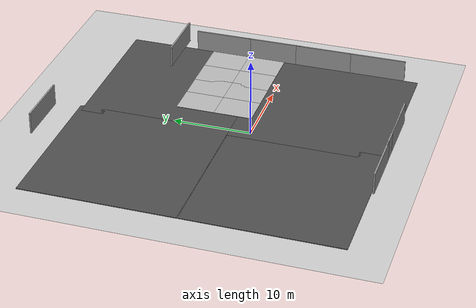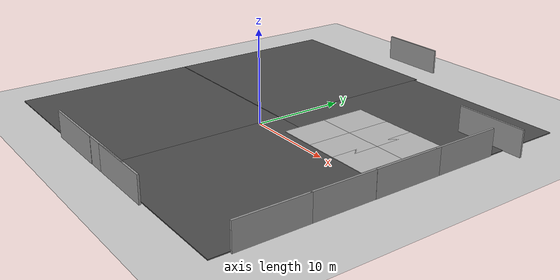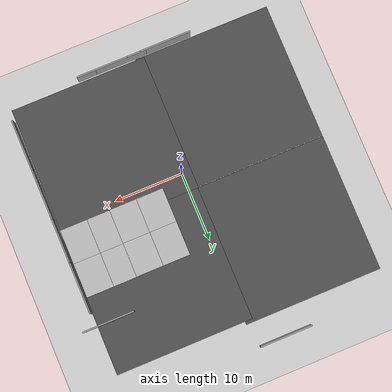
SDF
<sdf version="1.6">
 <world name="default">
  <plugin filename="gz-sim-physics-system" name="gz::sim::systems::Physics">
   <engine><filename>libgz-physics-dartsim-plugin.so</filename></engine>
  </plugin>
  <plugin filename="gz-sim-user-commands-system" name="gz::sim::systems::UserCommands"/>
  <plugin filename="gz-sim-scene-broadcaster-system" name="gz::sim::systems::SceneBroadcaster"/>
  <plugin filename="gz-sim-sensors-system" name="gz::sim::systems::Sensors">
   <render_engine>ogre2</render_engine>
  </plugin>
  <plugin filename="gz-sim-imu-system" name="gz::sim::systems::Imu"/>
  <plugin filename="gz-sim-navsat-system" name="gz::sim::systems::NavSat"/>
  <gravity>0.0 0.0 -9.8</gravity>
  <physics name="8ms" type="dartsim">
   <max_step_size>0.008</max_step_size>
   <real_time_factor>1.0</real_time_factor>
  </physics>
  <scene>
   <ambient>0.4 0.4 0.4 1</ambient>
   <background>0.7 0.7 0.7 1</background>
   <shadows>false</shadows>
   <grid>false</grid>
   <origin_visual>false</origin_visual>
  </scene>
  <model name="ground_plane">
   <static>1</static>
   <link name="link">
    <collision name="collision">
     <geometry><plane><normal>0 0 1</normal><size>100 100</size></plane></geometry>
     <surface><friction><ode><mu>100</mu><mu2>50</mu2></ode></friction></surface>
    </collision>
    <visual name="visual">
     <cast_shadows>0</cast_shadows>
     <geometry><plane><normal>0 0 1</normal><size>100 100</size></plane></geometry>
     <material>
      <script><uri>file://media/materials/scripts/gazebo.material</uri><name>Gazebo/Grey</name></script>
     </material>
    </visual>
   </link>
  </model>
  <model name="asphalt_plane">
   <static>1</static>
   <link name="link">
    <collision name="collision">
     <geometry><box><size>20 20 0.1</size></box></geometry>
     <surface><friction><ode><mu>100</mu><mu2>50</mu2></ode></friction></surface>
    </collision>
    <visual name="visual">
     <cast_shadows>0</cast_shadows>
     <geometry><box><size>20 20 0.1</size></box></geometry>
     <material>
      <script>
       <uri>model://asphalt_plane/materials/scripts</uri>
       <uri>model://asphalt_plane/materials/textures</uri>
       <name>vrc/asphalt</name>
      </script>
     </material>
    </visual>
   </link>
   <pose>-10.1692 -7.43707 0 0 -0 0</pose>
  </model>
  <model name="asphalt_plane_clone">
   <static>1</static>
   <link name="link">
    <collision name="collision">
     <geometry><box><size>20 20 0.1</size></box></geometry>
     <surface><friction><ode><mu>100</mu><mu2>50</mu2></ode></friction></surface>
    </collision>
    <visual name="visual">
     <cast_shadows>0</cast_shadows>
     <geometry><box><size>20 20 0.1</size></box></geometry>
     <material>
      <script>
       <uri>model://asphalt_plane/materials/scripts</uri>
       <uri>model://asphalt_plane/materials/textures</uri>
       <name>vrc/asphalt</name>
      </script>
     </material>
    </visual>
   </link>
   <pose>-10.1864 12.6443 0 0 -0 0</pose>
  </model>
  <model name="asphalt_plane_clone_clone">
   <static>1</static>
   <link name="link">
    <collision name="collision">
     <geometry><box><size>20 20 0.1</size></box></geometry>
     <surface><friction><ode><mu>100</mu><mu2>50</mu2></ode></friction></surface>
    </collision>
    <visual name="visual">
     <cast_shadows>0</cast_shadows>
     <geometry><box><size>20 20 0.1</size></box></geometry>
     <material>
      <script>
       <uri>model://asphalt_plane/materials/scripts</uri>
       <uri>model://asphalt_plane/materials/textures</uri>
       <name>vrc/asphalt</name>
      </script>
     </material>
    </visual>
   </link>
   <pose>8.71597 12.1785 0 0 -0 0</pose>
  </model>
  <model name="asphalt_plane_clone_clone_0">
   <static>1</static>
   <link name="link">
    <collision name="collision">
     <geometry><box><size>20 20 0.1</size></box></geometry>
     <surface><friction><ode><mu>100</mu><mu2>50</mu2></ode></friction></surface>
    </collision>
    <visual name="visual">
     <cast_shadows>0</cast_shadows>
     <geometry><box><size>20 20 0.1</size></box></geometry>
     <material>
      <script>
       <uri>model://asphalt_plane/materials/scripts</uri>
       <uri>model://asphalt_plane/materials/textures</uri>
       <name>vrc/asphalt</name>
      </script>
     </material>
    </visual>
   </link>
   <pose>8.60996 -7.34898 0 0 -0 0</pose>
  </model>
  <model name="grey_wall">
   <static>1</static>
   <link name="link">
    <pose>0 0 1.4 0 -0 0</pose>
    <collision name="collision"><geometry><box><size>7.5 0.2 2.8</size></box></geometry></collision>
    <visual name="visual">
     <cast_shadows>0</cast_shadows>
     <geometry><box><size>7.5 0.2 2.8</size></box></geometry>
     <material>
      <script>
       <uri>model://grey_wall/materials/scripts</uri>
       <uri>model://grey_wall/materials/textures</uri>
       <name>vrc/grey_wall</name>
      </script>
     </material>
    </visual>
   </link>
   <pose>-4.8114 -17.6626 0 0 -0 0</pose>
  </model>
  <model name="grey_wall_clone">
   <static>1</static>
   <link name="link">
    <pose>0 0 1.4 0 -0 0</pose>
    <collision name="collision"><geometry><box><size>7.5 0.2 2.8</size></box></geometry></collision>
    <visual name="visual">
     <cast_shadows>0</cast_shadows>
     <geometry><box><size>7.5 0.2 2.8</size></box></geometry>
     <material>
      <script>
       <uri>model://grey_wall/materials/scripts</uri>
       <uri>model://grey_wall/materials/textures</uri>
       <name>vrc/grey_wall</name>
      </script>
     </material>
    </visual>
   </link>
   <pose>1.84642 -17.6367 0 0 -0 0</pose>
  </model>
  <model name="grey_wall_clone_0">
   <static>1</static>
   <link name="link">
    <pose>0 0 1.4 0 -0 0</pose>
    <collision name="collision"><geometry><box><size>7.5 0.2 2.8</size></box></geometry></collision>
    <visual name="visual">
     <cast_shadows>0</cast_shadows>
     <geometry><box><size>7.5 0.2 2.8</size></box></geometry>
     <material>
      <script>
       <uri>model://grey_wall/materials/scripts</uri>
       <uri>model://grey_wall/materials/textures</uri>
       <name>vrc/grey_wall</name>
      </script>
     </material>
    </visual>
   </link>
   <pose>4.62088 -17.6372 0 0 -0 0</pose>
  </model>
  <model name="grey_wall_clone_clone">
   <static>1</static>
   <link name="link">
    <pose>0 0 1.4 0 -0 0</pose>
    <collision name="collision"><geometry><box><size>7.5 0.2 2.8</size></box></geometry></collision>
    <visual name="visual">
     <cast_shadows>0</cast_shadows>
     <geometry><box><size>7.5 0.2 2.8</size></box></geometry>
     <material>
      <script>
       <uri>model://grey_wall/materials/scripts</uri>
       <uri>model://grey_wall/materials/textures</uri>
       <name>vrc/grey_wall</name>
      </script>
     </material>
    </visual>
   </link>
   <pose>-4.48764 26.0166 0 0 -0 0</pose>
  </model>
  <model name="grey_wall_clone_clone_clone">
   <static>1</static>
   <link name="link">
    <pose>0 0 1.4 0 -0 0</pose>
    <collision name="collision"><geometry><box><size>7.5 0.2 2.8</size></box></geometry></collision>
    <visual name="visual">
     <cast_shadows>0</cast_shadows>
     <geometry><box><size>7.5 0.2 2.8</size></box></geometry>
     <material>
      <script>
       <uri>model://grey_wall/materials/scripts</uri>
       <uri>model://grey_wall/materials/textures</uri>
       <name>vrc/grey_wall</name>
      </script>
     </material>
    </visual>
   </link>
   <pose>16.935 15.0582 0 0 -0 0</pose>
  </model>
  <model name="grey_wall_clone_clone_clone_clone">
   <static>1</static>
   <link name="link">
    <pose>0 0 1.4 0 -0 0</pose>
    <collision name="collision"><geometry><box><size>7.5 0.2 2.8</size></box></geometry></collision>
    <visual name="visual">
     <cast_shadows>0</cast_shadows>
     <geometry><box><size>7.5 0.2 2.8</size></box></geometry>
     <material>
      <script>
       <uri>model://grey_wall/materials/scripts</uri>
       <uri>model://grey_wall/materials/textures</uri>
       <name>vrc/grey_wall</name>
      </script>
     </material>
    </visual>
   </link>
   <pose>18.767 9.41754 0 0 0 -1.56734</pose>
  </model>
  <model name="grey_wall_clone_clone_clone_clone_0">
   <static>1</static>
   <link name="link">
    <pose>0 0 1.4 0 -0 0</pose>
    <collision name="collision"><geometry><box><size>7.5 0.2 2.8</size></box></geometry></collision>
    <visual name="visual">
     <cast_shadows>0</cast_shadows>
     <geometry><box><size>7.5 0.2 2.8</size></box></geometry>
     <material>
      <script>
       <uri>model://grey_wall/materials/scripts</uri>
       <uri>model://grey_wall/materials/textures</uri>
       <name>vrc/grey_wall</name>
      </script>
     </material>
    </visual>
   </link>
   <pose>18.7963 2.45369 0 0 0 -1.56734</pose>
  </model>
  <model name="grey_wall_clone_clone_clone_clone_1">
   <static>1</static>
   <link name="link">
    <pose>0 0 1.4 0 -0 0</pose>
    <collision name="collision"><geometry><box><size>7.5 0.2 2.8</size></box></geometry></collision>
    <visual name="visual">
     <cast_shadows>0</cast_shadows>
     <geometry><box><size>7.5 0.2 2.8</size></box></geometry>
     <material>
      <script>
       <uri>model://grey_wall/materials/scripts</uri>
       <uri>model://grey_wall/materials/textures</uri>
       <name>vrc/grey_wall</name>
      </script>
     </material>
    </visual>
   </link>
   <pose>18.8058 -4.41342 0 0 0 -1.56734</pose>
  </model>
  <model name="grey_wall_clone_clone_clone_clone_2">
   <static>1</static>
   <link name="link">
    <pose>0 0 1.4 0 -0 0</pose>
    <collision name="collision"><geometry><box><size>7.5 0.2 2.8</size></box></geometry></collision>
    <visual name="visual">
     <cast_shadows>0</cast_shadows>
     <geometry><box><size>7.5 0.2 2.8</size></box></geometry>
     <material>
      <script>
       <uri>model://grey_wall/materials/scripts</uri>
       <uri>model://grey_wall/materials/textures</uri>
       <name>vrc/grey_wall</name>
      </script>
     </material>
    </visual>
   </link>
   <pose>18.8343 -11.7301 0 0 0 -1.56734</pose>
  </model>
  <model name="mud_box">
   <static>1</static>
   <link name="link">
    <collision name="collision"><geometry><box><size>8 10 0.2</size></box></geometry></collision>
    <visual name="visual_1">
     <pose>-2 2.5 0 0 -0 0</pose>
     <cast_shadows>0</cast_shadows>
     <geometry><box><size>4 5 0.2</size></box></geometry>
     <material>
      <script>
       <uri>model://mud_box/materials/scripts</uri>
       <uri>model://mud_box/materials/textures</uri>
       <name>vrc/mud</name>
      </script>
     </material>
    </visual>
    <visual name="visual_2">
     <pose>2 2.5 0 0 -0 0</pose>
     <cast_shadows>0</cast_shadows>
     <geometry><box><size>4 5 0.2</size></box></geometry>
     <material>
      <script>
       <uri>model://mud_box/materials/scripts</uri>
       <uri>model://mud_box/materials/textures</uri>
       <name>vrc/mud</name>
      </script>
     </material>
    </visual>
    <visual name="visual_3">
     <pose>2 -2.5 0 0 -0 0</pose>
     <cast_shadows>0</cast_shadows>
     <geometry><box><size>4 5 0.2</size></box></geometry>
     <material>
      <script>
       <uri>model://mud_box/materials/scripts</uri>
       <uri>model://mud_box/materials/textures</uri>
       <name>vrc/mud</name>
      </script>
     </material>
    </visual>
    <visual name="visual_4">
     <pose>-2 -2.5 0 0 -0 0</pose>
     <cast_shadows>0</cast_shadows>
     <geometry><box><size>4 5 0.2</size></box></geometry>
     <material>
      <script>
       <uri>model://mud_box/materials/scripts</uri>
       <uri>model://mud_box/materials/textures</uri>
       <name>vrc/mud</name>
      </script>
     </material>
    </visual>
   </link>
   <pose>14.6137 5.86275 0 0 -0 0</pose>
  </model>
  <model name="mud_box_clone">
   <static>1</static>
   <link name="link">
    <collision name="collision"><geometry><box><size>8 10 0.2</size></box></geometry></collision>
    <visual name="visual_1">
     <pose>-2 2.5 0 0 -0 0</pose>
     <cast_shadows>0</cast_shadows>
     <geometry><box><size>4 5 0.2</size></box></geometry>
     <material>
      <script>
       <uri>model://mud_box/materials/scripts</uri>
       <uri>model://mud_box/materials/textures</uri>
       <name>vrc/mud</name>
      </script>
     </material>
    </visual>
    <visual name="visual_2">
     <pose>2 2.5 0 0 -0 0</pose>
     <cast_shadows>0</cast_shadows>
     <geometry><box><size>4 5 0.2</size></box></geometry>
     <material>
      <script>
       <uri>model://mud_box/materials/scripts</uri>
       <uri>model://mud_box/materials/textures</uri>
       <name>vrc/mud</name>
      </script>
     </material>
    </visual>
    <visual name="visual_3">
     <pose>2 -2.5 0 0 -0 0</pose>
     <cast_shadows>0</cast_shadows>
     <geometry><box><size>4 5 0.2</size></box></geometry>
     <material>
      <script>
       <uri>model://mud_box/materials/scripts</uri>
       <uri>model://mud_box/materials/textures</uri>
       <name>vrc/mud</name>
      </script>
     </material>
    </visual>
    <visual name="visual_4">
     <pose>-2 -2.5 0 0 -0 0</pose>
     <cast_shadows>0</cast_shadows>
     <geometry><box><size>4 5 0.2</size></box></geometry>
     <material>
      <script>
       <uri>model://mud_box/materials/scripts</uri>
       <uri>model://mud_box/materials/textures</uri>
       <name>vrc/mud</name>
      </script>
     </material>
    </visual>
   </link>
   <pose>7.23773 5.83307 0 0 -0 0</pose>
  </model>
  <light name="sun" type="directional">
   <pose>0 0 10 0 -0 0</pose>
   <diffuse>0.8 0.8 0.8 1</diffuse>
   <specular>0.2 0.2 0.2 1</specular>
   <attenuation>
    <range>1000</range>
    <constant>0.9</constant>
    <linear>0.01</linear>
    <quadratic>0.001</quadratic>
   </attenuation>
   <direction>-0.5 0.1 -0.9</direction>
  </light>
  <spherical_coordinates>
   <surface_model>EARTH_WGS84</surface_model>
   <latitude_deg>33.83</latitude_deg>
   <longitude_deg>-84.42</longitude_deg>
   <elevation>254.99568</elevation>
   <heading_deg>180</heading_deg>
  </spherical_coordinates>
 </world>
</sdf>
